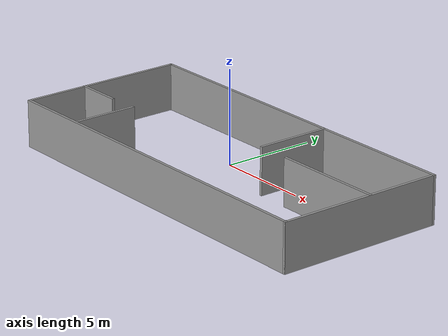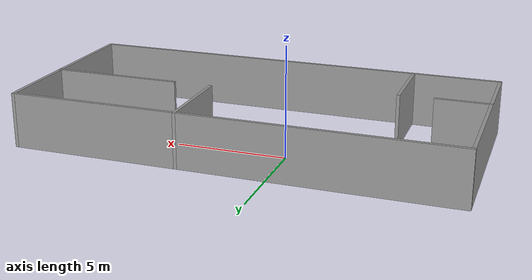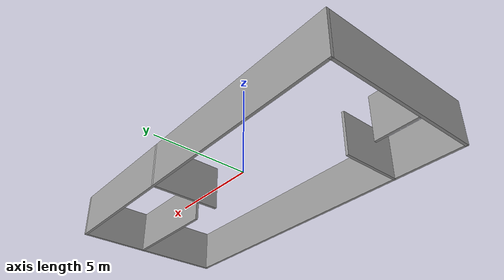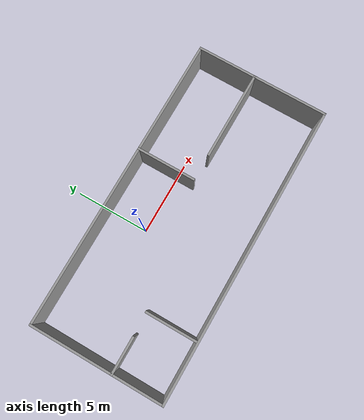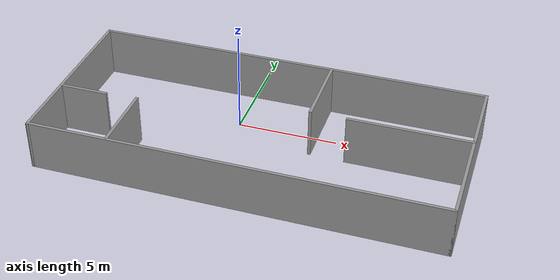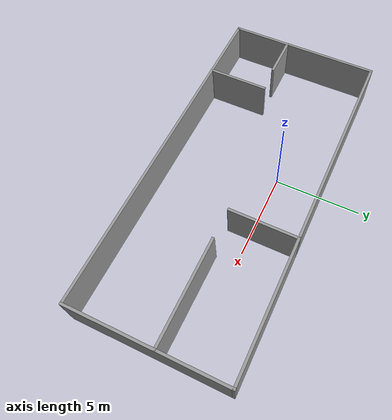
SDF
<?xml version='1.0'?>
<sdf version='1.7'>
  <model name='Untitled'>
    <pose>1.7305 -1.78204 0 0 -0 0</pose>
    <link name='Wall_0'>
      <collision name='Wall_0_Collision'>
        <geometry>
          <box>
            <size>9 0.15 2.5</size>
          </box>
        </geometry>
        <pose>0 0 1.25 0 -0 0</pose>
      </collision>
      <visual name='Wall_0_Visual'>
        <pose>0 0 1.25 0 -0 0</pose>
        <geometry>
          <box>
            <size>9 0.15 2.5</size>
          </box>
        </geometry>
        <material>
          <script>
            <uri>file://media/materials/scripts/gazebo.material</uri>
            <name>Gazebo/Grey</name>
          </script>
          <ambient>1 1 1 1</ambient>
        </material>
        <meta>
          <layer>0</layer>
        </meta>
      </visual>
      <pose>-9.925 0 0 0 -0 -1.5708</pose>
    </link>
    <link name='Wall_1'>
      <collision name='Wall_1_Collision'>
        <geometry>
          <box>
            <size>20 0.15 2.5</size>
          </box>
        </geometry>
        <pose>0 0 1.25 0 -0 0</pose>
      </collision>
      <visual name='Wall_1_Visual'>
        <pose>0 0 1.25 0 -0 0</pose>
        <geometry>
          <box>
            <size>20 0.15 2.5</size>
          </box>
        </geometry>
        <material>
          <script>
            <uri>file://media/materials/scripts/gazebo.material</uri>
            <name>Gazebo/Grey</name>
          </script>
          <ambient>1 1 1 1</ambient>
        </material>
        <meta>
          <layer>0</layer>
        </meta>
      </visual>
      <pose>-0 -4.425 0 0 -0 0</pose>
    </link>
    <link name='Wall_10'>
      <collision name='Wall_10_Collision'>
        <geometry>
          <box>
            <size>4 0.15 2.5</size>
          </box>
        </geometry>
        <pose>0 0 1.25 0 -0 0</pose>
      </collision>
      <visual name='Wall_10_Visual'>
        <pose>0 0 1.25 0 -0 0</pose>
        <geometry>
          <box>
            <size>4 0.15 2.5</size>
          </box>
        </geometry>
        <material>
          <script>
            <uri>file://media/materials/scripts/gazebo.material</uri>
            <name>Gazebo/Grey</name>
          </script>
          <ambient>1 1 1 1</ambient>
        </material>
        <meta>
          <layer>0</layer>
        </meta>
      </visual>
      <pose>2.242 2.5 0 0 -0 -1.5708</pose>
    </link>
    <link name='Wall_12'>
      <collision name='Wall_12_Collision'>
        <geometry>
          <box>
            <size>6 0.15 2.5</size>
          </box>
        </geometry>
        <pose>0 0 1.25 0 -0 0</pose>
      </collision>
      <visual name='Wall_12_Visual'>
        <pose>0 0 1.25 0 -0 0</pose>
        <geometry>
          <box>
            <size>6 0.15 2.5</size>
          </box>
        </geometry>
        <material>
          <script>
            <uri>file://media/materials/scripts/gazebo.material</uri>
            <name>Gazebo/Grey</name>
          </script>
          <ambient>1 1 1 1</ambient>
        </material>
        <meta>
          <layer>0</layer>
        </meta>
      </visual>
      <pose>6.98221 0.53156 0 0 -0 3.14159</pose>
    </link>
    <link name='Wall_2'>
      <collision name='Wall_2_Collision'>
        <geometry>
          <box>
            <size>9 0.15 2.5</size>
          </box>
        </geometry>
        <pose>0 0 1.25 0 -0 0</pose>
      </collision>
      <visual name='Wall_2_Visual'>
        <pose>0 0 1.25 0 -0 0</pose>
        <geometry>
          <box>
            <size>9 0.15 2.5</size>
          </box>
        </geometry>
        <material>
          <script>
            <uri>file://media/materials/scripts/gazebo.material</uri>
            <name>Gazebo/Grey</name>
          </script>
          <ambient>1 1 1 1</ambient>
        </material>
        <meta>
          <layer>0</layer>
        </meta>
      </visual>
      <pose>9.925 0 0 0 -0 1.5708</pose>
    </link>
    <link name='Wall_3'>
      <collision name='Wall_3_Collision'>
        <geometry>
          <box>
            <size>20 0.15 2.5</size>
          </box>
        </geometry>
        <pose>0 0 1.25 0 -0 0</pose>
      </collision>
      <visual name='Wall_3_Visual'>
        <pose>0 0 1.25 0 -0 0</pose>
        <geometry>
          <box>
            <size>20 0.15 2.5</size>
          </box>
        </geometry>
        <material>
          <script>
            <uri>file://media/materials/scripts/gazebo.material</uri>
            <name>Gazebo/Grey</name>
          </script>
          <ambient>1 1 1 1</ambient>
        </material>
        <meta>
          <layer>0</layer>
        </meta>
      </visual>
      <pose>-0 4.425 0 0 -0 3.14159</pose>
    </link>
    <link name='Wall_6'>
      <collision name='Wall_6_Collision'>
        <geometry>
          <box>
            <size>2.5 0.15 2.5</size>
          </box>
        </geometry>
        <pose>0 0 1.25 0 -0 0</pose>
      </collision>
      <visual name='Wall_6_Visual'>
        <pose>0 0 1.25 0 -0 0</pose>
        <geometry>
          <box>
            <size>2.5 0.15 2.5</size>
          </box>
        </geometry>
        <material>
          <script>
            <uri>file://media/materials/scripts/gazebo.material</uri>
            <name>Gazebo/Grey</name>
          </script>
          <ambient>1 1 1 1</ambient>
        </material>
        <meta>
          <layer>0</layer>
        </meta>
      </visual>
      <pose>-8.75 -1.05015 0 0 -0 0</pose>
    </link>
    <link name='Wall_8'>
      <collision name='Wall_8_Collision'>
        <geometry>
          <box>
            <size>3.5 0.15 2.5</size>
          </box>
        </geometry>
        <pose>0 0 1.25 0 -0 0</pose>
      </collision>
      <visual name='Wall_8_Visual'>
        <pose>0 0 1.25 0 -0 0</pose>
        <geometry>
          <box>
            <size>3.5 0.15 2.5</size>
          </box>
        </geometry>
        <material>
          <script>
            <uri>file://media/materials/scripts/gazebo.material</uri>
            <name>Gazebo/Grey</name>
          </script>
          <ambient>1 1 1 1</ambient>
        </material>
        <meta>
          <layer>0</layer>
        </meta>
      </visual>
      <pose>-5.97072 -2.66432 0 0 -0 -1.5708</pose>
    </link>
    <static>1</static>
  </model>
</sdf>
